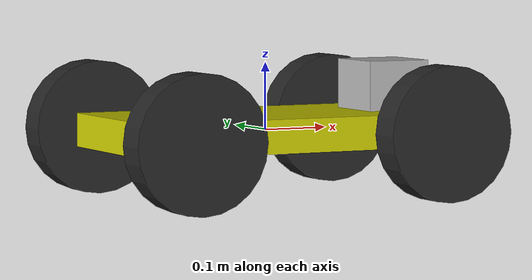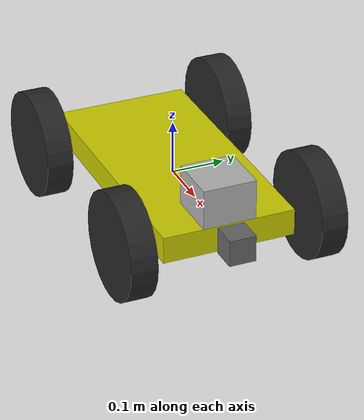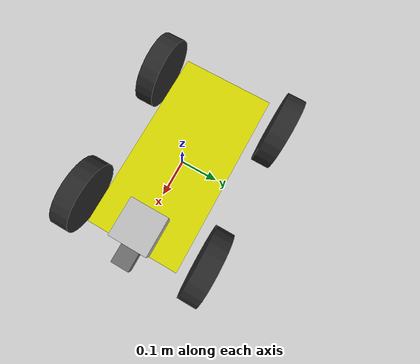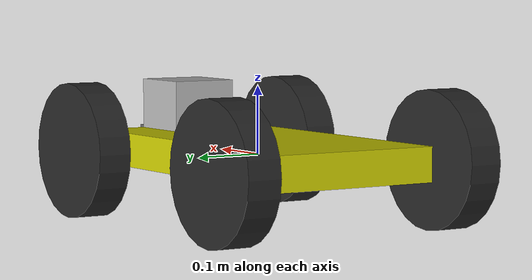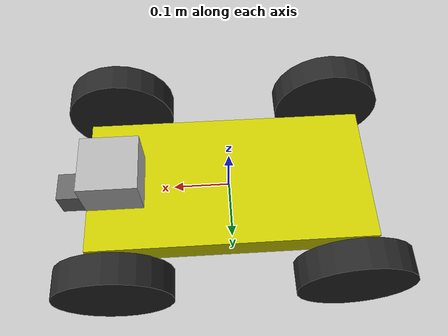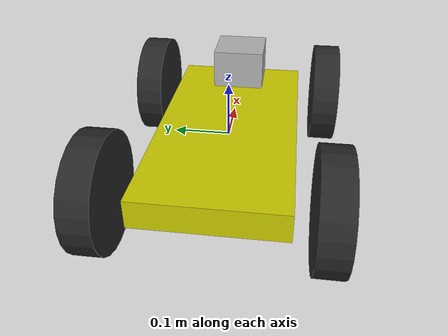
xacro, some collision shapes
<?xml version="1.0" encoding="UTF-8"?>
<robot name="vivaRob" xmlns:xacro="http://www.ros.org/wiki/xacro">
    <xacro:include filename="$(find my_robot)/urdf/my_robot.gazebo" />

    <!-- define all the parameters for the robot -->
    <xacro:property name="bodylen" value="0.5" />
    <xacro:property name="width" value="0.25" />
    <xacro:property name="mass_chassis" value="15.0" />
    <xacro:property name="wheel_radius" value="0.1" />
    <xacro:property name="wheel_width" value="0.05" />

    <!-- color property of the robot -->
    <material name="dark_grey"><color rgba="0.2 0.2 0.2 1.0"></color></material>
    <material name="light_grey"><color rgba="0.4 0.4 0.4 1.0"></color></material>
    <material name="yellow"><color rgba="0.8 0.8 0.0 1.0"></color></material>
    <material name="black"><color rgba="0.15 0.15 0.15 1.0"></color></material>
    <gazebo reference="front_left_wheel_link">
        <material>Gazebo/Black</material>
    </gazebo>
    <gazebo reference="front_right_wheel_link">
        <material>Gazebo/Black</material>
    </gazebo>
    <gazebo reference="rear_left_wheel_link">
        <material>Gazebo/Black</material>
    </gazebo>
    <gazebo reference="rear_right_wheel_link">
        <material>Gazebo/Black</material>
    </gazebo>
    <gazebo reference="chassis">
        <material>Gazebo/Yellow</material>
    </gazebo>
    <gazebo reference="camera">
        <material>Gazebo/Grey</material>
    </gazebo>

    <!-- define macros for the robot -->
    <xacro:property  name="origin0">
        <origin xyz=" 0 0 0 " rpy=" 0 0 0"/>
    </xacro:property>
    <!-- box geometry macro -->
    <xacro:property name="box_geometry">
        <geometry>
            <box size="${bodylen} ${width} 0.05" />
        </geometry>
    </xacro:property>

    <link name="base_link"></link>
    <joint name="base_link_joint" type="fixed">
        <parent link="base_link" />
        <origin xyz="0 0 0" rpy="0 0 0 " />
        <child link="chassis" />
    </joint>
   <!-- robot chassis link -->
    <link name="chassis">
        <pose>0 0 0.5 0 0 0</pose>
        <visual name="chassis_visual">
            <xacro:insert_block name="origin0" />
            <xacro:insert_block name="box_geometry"  />
            <material name="yellow" />
        </visual>
        <collision name="chassis_collision">
            <xacro:insert_block name="origin0" />
            <xacro:insert_block name="box_geometry"  />
        </collision>
        <inertial>
            <mass value="${mass_chassis}" />
            <xacro:insert_block name="origin0" />
            <inertia
                ixx="0.2" ixy="0" ixz="0"
                iyy="0.2" iyz="0"
                izz="0.1"
                />
        </inertial>
    </link>

    <!-- links and joints xacro macro for the robot -->
    <xacro:macro name="wheel" params="prefix *joint_pose">
        <link name="${prefix}_wheel_link">
            <visual>
                <material name="black"></material>
                <geometry>
                    <cylinder radius='${wheel_radius}' length='${wheel_width}'/>
                </geometry>
                <origin xyz="0 0 0" rpy="0 1.5708 1.5708"/>
            </visual>
            <collision>
                <geometry>
                    <cylinder radius='${wheel_radius}' length='${wheel_width}'/>
                </geometry>
                <origin xyz="0 0 0" rpy="0 1.5708 1.5708"/>
            </collision>
            <inertial>
                <mass value="5"/>
                <origin xyz="0 0 0" rpy="0 1.5708 1.5708" />
                <inertia
                ixx="0.1" ixy="0" ixz="0"
                iyy="0.1" iyz="0"
                izz="0.1"
                />
            </inertial>
        </link>

        <joint type="continuous" name="${prefix}_wheel_hinge" >
            <xacro:insert_block name="joint_pose" />
            <child link="${prefix}_wheel_link" />
            <parent link="chassis" />
            <axis xyz="0 1 0" rpy="0 0 0" />
            <limit effort="10000" velocity="1000" />
            <dynamics damping="1.0" friction="1.0" />
        </joint>
    </xacro:macro>

    <!-- insert four wheels -->
    <xacro:wheel prefix="left_front">
       <origin xyz="0.2 -0.18 0" rpy="0 0 0" />
    </xacro:wheel>
    <xacro:wheel prefix="right_front">
       <origin xyz="0.2 0.18 0" rpy="0 0 0" />
    </xacro:wheel>
    <xacro:wheel prefix="left_back">
       <origin xyz="-0.2 -0.18 0" rpy="0 0 0" />
    </xacro:wheel>
    <xacro:wheel prefix="right_back">
       <origin xyz="-0.2 0.18 0" rpy="0 0 0" />
    </xacro:wheel>

    <link name="camera">
        <visual name="camera_visual">
            <geometry>
                <box size="0.05 0.05 0.05"/>
            </geometry>
            <origin xyz="0 0 0" rpy="0 0 0" />
            <material name="light_grey" />
        </visual>
        <collision name="camera_collision">
            <geometry>
                <box size="0.05 0.05 0.05"/>
            </geometry>
            <origin xyz="0 0 0" rpy="0 0 0" />
        </collision>
        <inertial>
            <mass value="0.1"/>
            <origin xyz="0 0 0" rpy="0 0 0" />
            <inertia
            ixx="1e-6" ixy="0" ixz="0"
            iyy="1e-6" iyz="0"
            izz="1e-6"
            />
        </inertial>
    </link>

    <joint type="fixed" name="camera_joint">
        <origin xyz=" 0.28 0 0" rpy="0 0 0" />
        <child link="camera"/>
        <parent link="chassis" />
        <axis xyz=" 0 1 0 " rpy="0 0 0" />
    </joint>

    <link name="hokuyo">
        <visual name="hokuyo_visual">
            <geometry>
                <mesh filename="package://my_robot/meshes/hokuyo.dae" />
            </geometry>
            <origin xyz="0 0 0" rpy="0 0 0" />
        </visual>
        <collision name="camera_collision">
            <geometry>
                <box size="0.1 0.1 0.1"/>
            </geometry>
            <origin xyz="0 0 0" rpy="0 0 0" />
        </collision>
        <inertial>
            <mass value="1e-5"/>
            <origin xyz="0 0 0" rpy="0 0 0" />
            <inertia
            ixx="1e-6" ixy="0" ixz="0"
            iyy="1e-6" iyz="0"
            izz="1e-6"
            />
        </inertial>
    </link>

    <joint type="fixed" name="hokuyo_joint">
        <origin xyz="0.2 0 0.05" rpy="0 0 0" />
        <parent link="chassis" />
        <child link="hokuyo" />
        <axis xyz="0 1 0" rpy="0 0 0" />
    </joint>

</robot>
